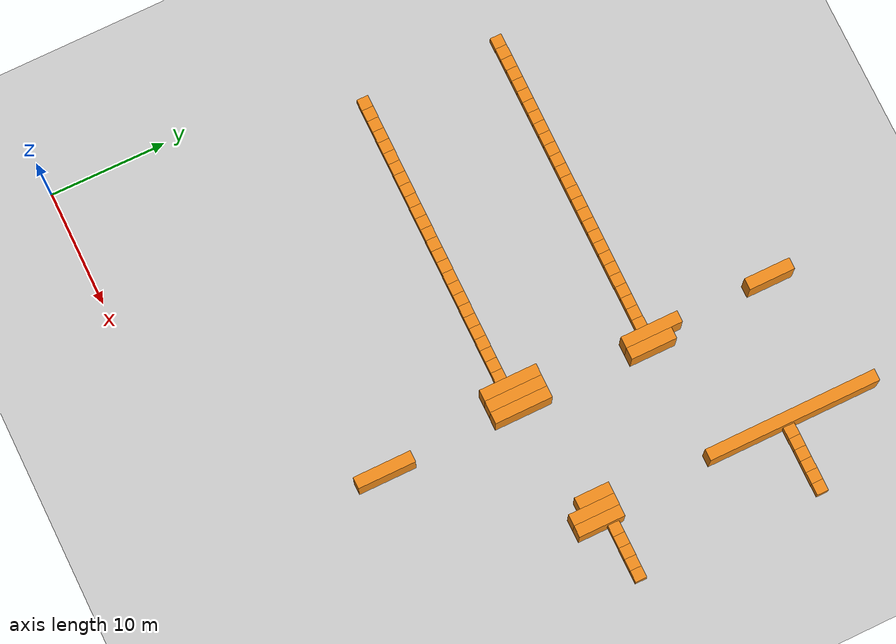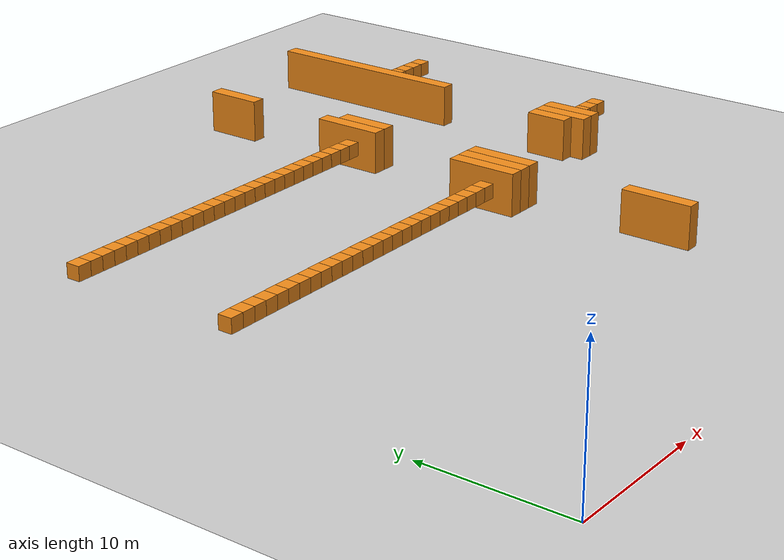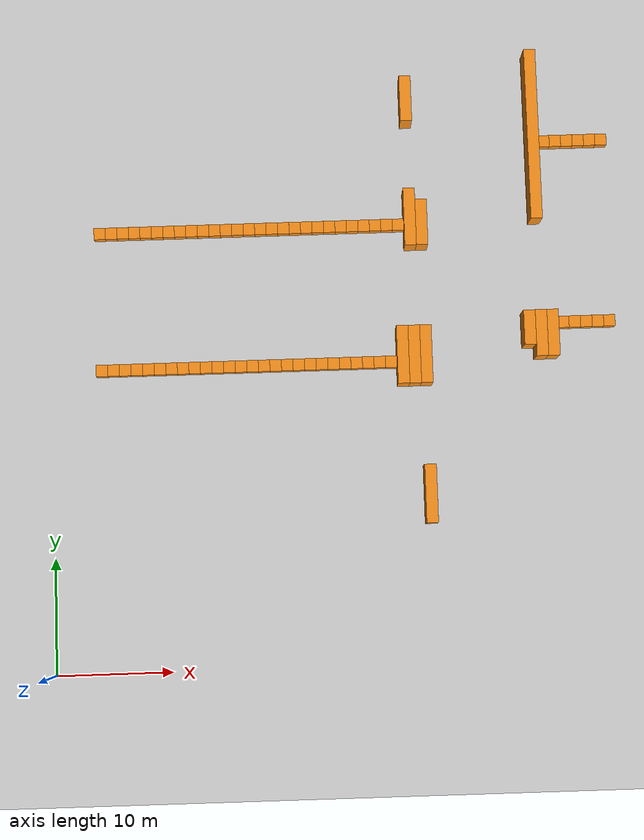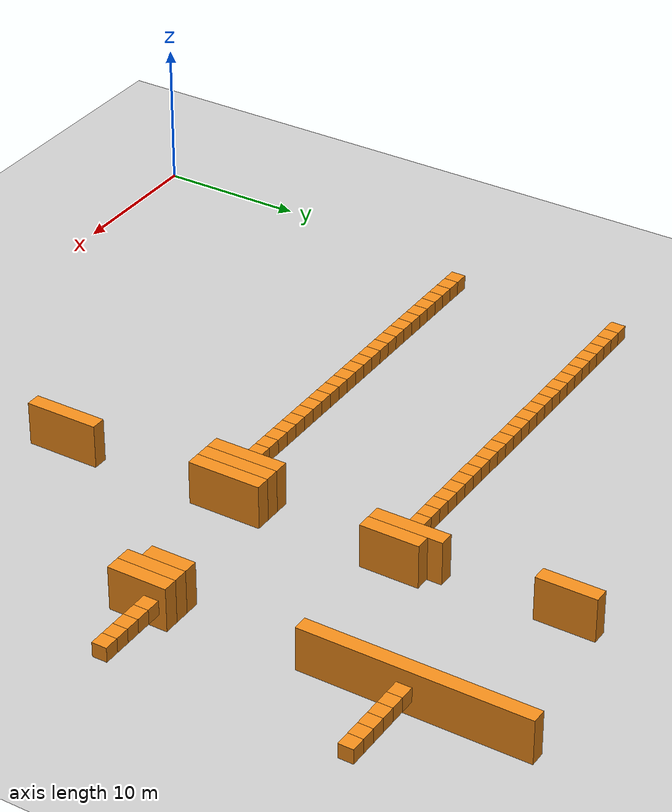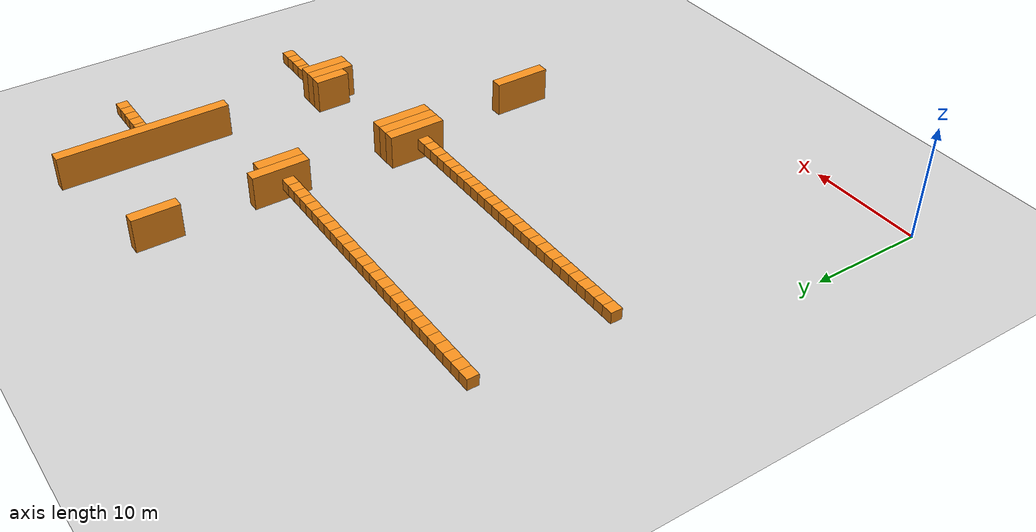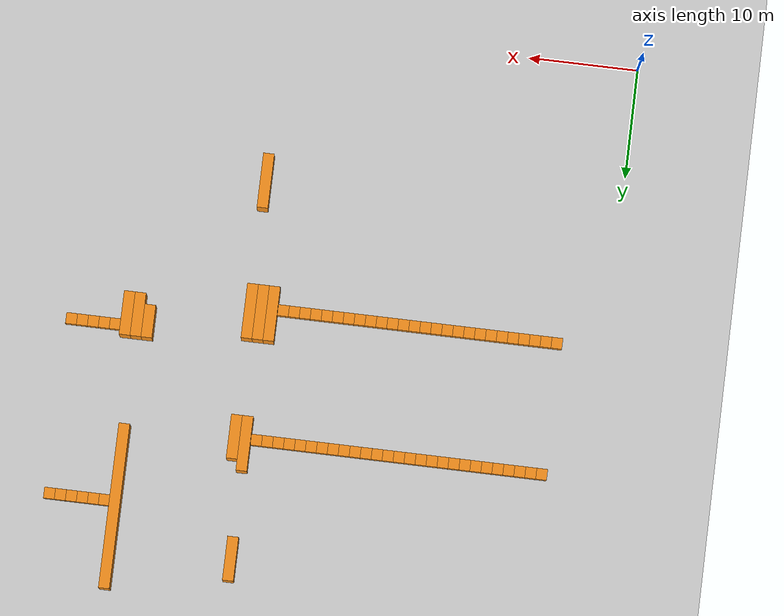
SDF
<sdf version="1.6">
 <world name="default">
  <include><uri>model://ground_plane</uri></include>
  <model name="unit_box_004">
   <pose>4.50    26.00     1.50 0 0 0</pose>
   <static>1</static>
   <link name="link">
    <inertial>
     <mass>5000</mass>
     <inertia><ixx>200</ixx><ixy>0</ixy><ixz>0</ixz><iyy>200</iyy><iyz>0</iyz><izz>200</izz></inertia>
    </inertial>
    <collision name="collision"><geometry><box><size>1 1 1</size></box></geometry></collision>
    <visual name="visual">
     <geometry><box><size>1 1 1</size></box></geometry>
     <material>
      <script><name>Gazebo/Orange</name><uri>file://media/materials/scripts/gazebo.material</uri></script>
     </material>
    </visual>
   </link>
  </model>
  <model name="unit_box_005">
   <pose>4.50    38.00     1.50 0 0 0</pose>
   <static>1</static>
   <link name="link">
    <inertial>
     <mass>5000</mass>
     <inertia><ixx>200</ixx><ixy>0</ixy><ixz>0</ixz><iyy>200</iyy><iyz>0</iyz><izz>200</izz></inertia>
    </inertial>
    <collision name="collision"><geometry><box><size>1 1 1</size></box></geometry></collision>
    <visual name="visual">
     <geometry><box><size>1 1 1</size></box></geometry>
     <material>
      <script><name>Gazebo/Orange</name><uri>file://media/materials/scripts/gazebo.material</uri></script>
     </material>
    </visual>
   </link>
  </model>
  <model name="unit_box_017">
   <pose>5.50    26.00     1.50 0 0 0</pose>
   <static>1</static>
   <link name="link">
    <inertial>
     <mass>5000</mass>
     <inertia><ixx>200</ixx><ixy>0</ixy><ixz>0</ixz><iyy>200</iyy><iyz>0</iyz><izz>200</izz></inertia>
    </inertial>
    <collision name="collision"><geometry><box><size>1 1 1</size></box></geometry></collision>
    <visual name="visual">
     <geometry><box><size>1 1 1</size></box></geometry>
     <material>
      <script><name>Gazebo/Orange</name><uri>file://media/materials/scripts/gazebo.material</uri></script>
     </material>
    </visual>
   </link>
  </model>
  <model name="unit_box_018">
   <pose>5.50    38.00     1.50 0 0 0</pose>
   <static>1</static>
   <link name="link">
    <inertial>
     <mass>5000</mass>
     <inertia><ixx>200</ixx><ixy>0</ixy><ixz>0</ixz><iyy>200</iyy><iyz>0</iyz><izz>200</izz></inertia>
    </inertial>
    <collision name="collision"><geometry><box><size>1 1 1</size></box></geometry></collision>
    <visual name="visual">
     <geometry><box><size>1 1 1</size></box></geometry>
     <material>
      <script><name>Gazebo/Orange</name><uri>file://media/materials/scripts/gazebo.material</uri></script>
     </material>
    </visual>
   </link>
  </model>
  <model name="unit_box_030">
   <pose>6.50    26.00     1.50 0 0 0</pose>
   <static>1</static>
   <link name="link">
    <inertial>
     <mass>5000</mass>
     <inertia><ixx>200</ixx><ixy>0</ixy><ixz>0</ixz><iyy>200</iyy><iyz>0</iyz><izz>200</izz></inertia>
    </inertial>
    <collision name="collision"><geometry><box><size>1 1 1</size></box></geometry></collision>
    <visual name="visual">
     <geometry><box><size>1 1 1</size></box></geometry>
     <material>
      <script><name>Gazebo/Orange</name><uri>file://media/materials/scripts/gazebo.material</uri></script>
     </material>
    </visual>
   </link>
  </model>
  <model name="unit_box_031">
   <pose>6.50    38.00     1.50 0 0 0</pose>
   <static>1</static>
   <link name="link">
    <inertial>
     <mass>5000</mass>
     <inertia><ixx>200</ixx><ixy>0</ixy><ixz>0</ixz><iyy>200</iyy><iyz>0</iyz><izz>200</izz></inertia>
    </inertial>
    <collision name="collision"><geometry><box><size>1 1 1</size></box></geometry></collision>
    <visual name="visual">
     <geometry><box><size>1 1 1</size></box></geometry>
     <material>
      <script><name>Gazebo/Orange</name><uri>file://media/materials/scripts/gazebo.material</uri></script>
     </material>
    </visual>
   </link>
  </model>
  <model name="unit_box_043">
   <pose>7.50    26.00     1.50 0 0 0</pose>
   <static>1</static>
   <link name="link">
    <inertial>
     <mass>5000</mass>
     <inertia><ixx>200</ixx><ixy>0</ixy><ixz>0</ixz><iyy>200</iyy><iyz>0</iyz><izz>200</izz></inertia>
    </inertial>
    <collision name="collision"><geometry><box><size>1 1 1</size></box></geometry></collision>
    <visual name="visual">
     <geometry><box><size>1 1 1</size></box></geometry>
     <material>
      <script><name>Gazebo/Orange</name><uri>file://media/materials/scripts/gazebo.material</uri></script>
     </material>
    </visual>
   </link>
  </model>
  <model name="unit_box_044">
   <pose>7.50    38.00     1.50 0 0 0</pose>
   <static>1</static>
   <link name="link">
    <inertial>
     <mass>5000</mass>
     <inertia><ixx>200</ixx><ixy>0</ixy><ixz>0</ixz><iyy>200</iyy><iyz>0</iyz><izz>200</izz></inertia>
    </inertial>
    <collision name="collision"><geometry><box><size>1 1 1</size></box></geometry></collision>
    <visual name="visual">
     <geometry><box><size>1 1 1</size></box></geometry>
     <material>
      <script><name>Gazebo/Orange</name><uri>file://media/materials/scripts/gazebo.material</uri></script>
     </material>
    </visual>
   </link>
  </model>
  <model name="unit_box_056">
   <pose>8.50    26.00     1.50 0 0 0</pose>
   <static>1</static>
   <link name="link">
    <inertial>
     <mass>5000</mass>
     <inertia><ixx>200</ixx><ixy>0</ixy><ixz>0</ixz><iyy>200</iyy><iyz>0</iyz><izz>200</izz></inertia>
    </inertial>
    <collision name="collision"><geometry><box><size>1 1 1</size></box></geometry></collision>
    <visual name="visual">
     <geometry><box><size>1 1 1</size></box></geometry>
     <material>
      <script><name>Gazebo/Orange</name><uri>file://media/materials/scripts/gazebo.material</uri></script>
     </material>
    </visual>
   </link>
  </model>
  <model name="unit_box_057">
   <pose>8.50    38.00     1.50 0 0 0</pose>
   <static>1</static>
   <link name="link">
    <inertial>
     <mass>5000</mass>
     <inertia><ixx>200</ixx><ixy>0</ixy><ixz>0</ixz><iyy>200</iyy><iyz>0</iyz><izz>200</izz></inertia>
    </inertial>
    <collision name="collision"><geometry><box><size>1 1 1</size></box></geometry></collision>
    <visual name="visual">
     <geometry><box><size>1 1 1</size></box></geometry>
     <material>
      <script><name>Gazebo/Orange</name><uri>file://media/materials/scripts/gazebo.material</uri></script>
     </material>
    </visual>
   </link>
  </model>
  <model name="unit_box_069">
   <pose>9.50    26.00     1.50 0 0 0</pose>
   <static>1</static>
   <link name="link">
    <inertial>
     <mass>5000</mass>
     <inertia><ixx>200</ixx><ixy>0</ixy><ixz>0</ixz><iyy>200</iyy><iyz>0</iyz><izz>200</izz></inertia>
    </inertial>
    <collision name="collision"><geometry><box><size>1 1 1</size></box></geometry></collision>
    <visual name="visual">
     <geometry><box><size>1 1 1</size></box></geometry>
     <material>
      <script><name>Gazebo/Orange</name><uri>file://media/materials/scripts/gazebo.material</uri></script>
     </material>
    </visual>
   </link>
  </model>
  <model name="unit_box_070">
   <pose>9.50    38.00     1.50 0 0 0</pose>
   <static>1</static>
   <link name="link">
    <inertial>
     <mass>5000</mass>
     <inertia><ixx>200</ixx><ixy>0</ixy><ixz>0</ixz><iyy>200</iyy><iyz>0</iyz><izz>200</izz></inertia>
    </inertial>
    <collision name="collision"><geometry><box><size>1 1 1</size></box></geometry></collision>
    <visual name="visual">
     <geometry><box><size>1 1 1</size></box></geometry>
     <material>
      <script><name>Gazebo/Orange</name><uri>file://media/materials/scripts/gazebo.material</uri></script>
     </material>
    </visual>
   </link>
  </model>
  <model name="unit_box_082">
   <pose>10.50    26.00     1.50 0 0 0</pose>
   <static>1</static>
   <link name="link">
    <inertial>
     <mass>5000</mass>
     <inertia><ixx>200</ixx><ixy>0</ixy><ixz>0</ixz><iyy>200</iyy><iyz>0</iyz><izz>200</izz></inertia>
    </inertial>
    <collision name="collision"><geometry><box><size>1 1 1</size></box></geometry></collision>
    <visual name="visual">
     <geometry><box><size>1 1 1</size></box></geometry>
     <material>
      <script><name>Gazebo/Orange</name><uri>file://media/materials/scripts/gazebo.material</uri></script>
     </material>
    </visual>
   </link>
  </model>
  <model name="unit_box_083">
   <pose>10.50    38.00     1.50 0 0 0</pose>
   <static>1</static>
   <link name="link">
    <inertial>
     <mass>5000</mass>
     <inertia><ixx>200</ixx><ixy>0</ixy><ixz>0</ixz><iyy>200</iyy><iyz>0</iyz><izz>200</izz></inertia>
    </inertial>
    <collision name="collision"><geometry><box><size>1 1 1</size></box></geometry></collision>
    <visual name="visual">
     <geometry><box><size>1 1 1</size></box></geometry>
     <material>
      <script><name>Gazebo/Orange</name><uri>file://media/materials/scripts/gazebo.material</uri></script>
     </material>
    </visual>
   </link>
  </model>
  <model name="unit_box_095">
   <pose>11.50    26.00     1.50 0 0 0</pose>
   <static>1</static>
   <link name="link">
    <inertial>
     <mass>5000</mass>
     <inertia><ixx>200</ixx><ixy>0</ixy><ixz>0</ixz><iyy>200</iyy><iyz>0</iyz><izz>200</izz></inertia>
    </inertial>
    <collision name="collision"><geometry><box><size>1 1 1</size></box></geometry></collision>
    <visual name="visual">
     <geometry><box><size>1 1 1</size></box></geometry>
     <material>
      <script><name>Gazebo/Orange</name><uri>file://media/materials/scripts/gazebo.material</uri></script>
     </material>
    </visual>
   </link>
  </model>
  <model name="unit_box_096">
   <pose>11.50    38.00     1.50 0 0 0</pose>
   <static>1</static>
   <link name="link">
    <inertial>
     <mass>5000</mass>
     <inertia><ixx>200</ixx><ixy>0</ixy><ixz>0</ixz><iyy>200</iyy><iyz>0</iyz><izz>200</izz></inertia>
    </inertial>
    <collision name="collision"><geometry><box><size>1 1 1</size></box></geometry></collision>
    <visual name="visual">
     <geometry><box><size>1 1 1</size></box></geometry>
     <material>
      <script><name>Gazebo/Orange</name><uri>file://media/materials/scripts/gazebo.material</uri></script>
     </material>
    </visual>
   </link>
  </model>
  <model name="unit_box_108">
   <pose>12.50    26.00     1.50 0 0 0</pose>
   <static>1</static>
   <link name="link">
    <inertial>
     <mass>5000</mass>
     <inertia><ixx>200</ixx><ixy>0</ixy><ixz>0</ixz><iyy>200</iyy><iyz>0</iyz><izz>200</izz></inertia>
    </inertial>
    <collision name="collision"><geometry><box><size>1 1 1</size></box></geometry></collision>
    <visual name="visual">
     <geometry><box><size>1 1 1</size></box></geometry>
     <material>
      <script><name>Gazebo/Orange</name><uri>file://media/materials/scripts/gazebo.material</uri></script>
     </material>
    </visual>
   </link>
  </model>
  <model name="unit_box_109">
   <pose>12.50    38.00     1.50 0 0 0</pose>
   <static>1</static>
   <link name="link">
    <inertial>
     <mass>5000</mass>
     <inertia><ixx>200</ixx><ixy>0</ixy><ixz>0</ixz><iyy>200</iyy><iyz>0</iyz><izz>200</izz></inertia>
    </inertial>
    <collision name="collision"><geometry><box><size>1 1 1</size></box></geometry></collision>
    <visual name="visual">
     <geometry><box><size>1 1 1</size></box></geometry>
     <material>
      <script><name>Gazebo/Orange</name><uri>file://media/materials/scripts/gazebo.material</uri></script>
     </material>
    </visual>
   </link>
  </model>
  <model name="unit_box_121">
   <pose>13.50    26.00     1.50 0 0 0</pose>
   <static>1</static>
   <link name="link">
    <inertial>
     <mass>5000</mass>
     <inertia><ixx>200</ixx><ixy>0</ixy><ixz>0</ixz><iyy>200</iyy><iyz>0</iyz><izz>200</izz></inertia>
    </inertial>
    <collision name="collision"><geometry><box><size>1 1 1</size></box></geometry></collision>
    <visual name="visual">
     <geometry><box><size>1 1 1</size></box></geometry>
     <material>
      <script><name>Gazebo/Orange</name><uri>file://media/materials/scripts/gazebo.material</uri></script>
     </material>
    </visual>
   </link>
  </model>
  <model name="unit_box_122">
   <pose>13.50    38.00     1.50 0 0 0</pose>
   <static>1</static>
   <link name="link">
    <inertial>
     <mass>5000</mass>
     <inertia><ixx>200</ixx><ixy>0</ixy><ixz>0</ixz><iyy>200</iyy><iyz>0</iyz><izz>200</izz></inertia>
    </inertial>
    <collision name="collision"><geometry><box><size>1 1 1</size></box></geometry></collision>
    <visual name="visual">
     <geometry><box><size>1 1 1</size></box></geometry>
     <material>
      <script><name>Gazebo/Orange</name><uri>file://media/materials/scripts/gazebo.material</uri></script>
     </material>
    </visual>
   </link>
  </model>
  <model name="unit_box_134">
   <pose>14.50    26.00     1.50 0 0 0</pose>
   <static>1</static>
   <link name="link">
    <inertial>
     <mass>5000</mass>
     <inertia><ixx>200</ixx><ixy>0</ixy><ixz>0</ixz><iyy>200</iyy><iyz>0</iyz><izz>200</izz></inertia>
    </inertial>
    <collision name="collision"><geometry><box><size>1 1 1</size></box></geometry></collision>
    <visual name="visual">
     <geometry><box><size>1 1 1</size></box></geometry>
     <material>
      <script><name>Gazebo/Orange</name><uri>file://media/materials/scripts/gazebo.material</uri></script>
     </material>
    </visual>
   </link>
  </model>
  <model name="unit_box_135">
   <pose>14.50    38.00     1.50 0 0 0</pose>
   <static>1</static>
   <link name="link">
    <inertial>
     <mass>5000</mass>
     <inertia><ixx>200</ixx><ixy>0</ixy><ixz>0</ixz><iyy>200</iyy><iyz>0</iyz><izz>200</izz></inertia>
    </inertial>
    <collision name="collision"><geometry><box><size>1 1 1</size></box></geometry></collision>
    <visual name="visual">
     <geometry><box><size>1 1 1</size></box></geometry>
     <material>
      <script><name>Gazebo/Orange</name><uri>file://media/materials/scripts/gazebo.material</uri></script>
     </material>
    </visual>
   </link>
  </model>
  <model name="unit_box_147">
   <pose>15.50    26.00     1.50 0 0 0</pose>
   <static>1</static>
   <link name="link">
    <inertial>
     <mass>5000</mass>
     <inertia><ixx>200</ixx><ixy>0</ixy><ixz>0</ixz><iyy>200</iyy><iyz>0</iyz><izz>200</izz></inertia>
    </inertial>
    <collision name="collision"><geometry><box><size>1 1 1</size></box></geometry></collision>
    <visual name="visual">
     <geometry><box><size>1 1 1</size></box></geometry>
     <material>
      <script><name>Gazebo/Orange</name><uri>file://media/materials/scripts/gazebo.material</uri></script>
     </material>
    </visual>
   </link>
  </model>
  <model name="unit_box_148">
   <pose>15.50    38.00     1.50 0 0 0</pose>
   <static>1</static>
   <link name="link">
    <inertial>
     <mass>5000</mass>
     <inertia><ixx>200</ixx><ixy>0</ixy><ixz>0</ixz><iyy>200</iyy><iyz>0</iyz><izz>200</izz></inertia>
    </inertial>
    <collision name="collision"><geometry><box><size>1 1 1</size></box></geometry></collision>
    <visual name="visual">
     <geometry><box><size>1 1 1</size></box></geometry>
     <material>
      <script><name>Gazebo/Orange</name><uri>file://media/materials/scripts/gazebo.material</uri></script>
     </material>
    </visual>
   </link>
  </model>
  <model name="unit_box_160">
   <pose>16.50    26.00     1.50 0 0 0</pose>
   <static>1</static>
   <link name="link">
    <inertial>
     <mass>5000</mass>
     <inertia><ixx>200</ixx><ixy>0</ixy><ixz>0</ixz><iyy>200</iyy><iyz>0</iyz><izz>200</izz></inertia>
    </inertial>
    <collision name="collision"><geometry><box><size>1 1 1</size></box></geometry></collision>
    <visual name="visual">
     <geometry><box><size>1 1 1</size></box></geometry>
     <material>
      <script><name>Gazebo/Orange</name><uri>file://media/materials/scripts/gazebo.material</uri></script>
     </material>
    </visual>
   </link>
  </model>
  <model name="unit_box_161">
   <pose>16.50    38.00     1.50 0 0 0</pose>
   <static>1</static>
   <link name="link">
    <inertial>
     <mass>5000</mass>
     <inertia><ixx>200</ixx><ixy>0</ixy><ixz>0</ixz><iyy>200</iyy><iyz>0</iyz><izz>200</izz></inertia>
    </inertial>
    <collision name="collision"><geometry><box><size>1 1 1</size></box></geometry></collision>
    <visual name="visual">
     <geometry><box><size>1 1 1</size></box></geometry>
     <material>
      <script><name>Gazebo/Orange</name><uri>file://media/materials/scripts/gazebo.material</uri></script>
     </material>
    </visual>
   </link>
  </model>
  <model name="unit_box_173">
   <pose>17.50    26.00     1.50 0 0 0</pose>
   <static>1</static>
   <link name="link">
    <inertial>
     <mass>5000</mass>
     <inertia><ixx>200</ixx><ixy>0</ixy><ixz>0</ixz><iyy>200</iyy><iyz>0</iyz><izz>200</izz></inertia>
    </inertial>
    <collision name="collision"><geometry><box><size>1 1 1</size></box></geometry></collision>
    <visual name="visual">
     <geometry><box><size>1 1 1</size></box></geometry>
     <material>
      <script><name>Gazebo/Orange</name><uri>file://media/materials/scripts/gazebo.material</uri></script>
     </material>
    </visual>
   </link>
  </model>
  <model name="unit_box_174">
   <pose>17.50    38.00     1.50 0 0 0</pose>
   <static>1</static>
   <link name="link">
    <inertial>
     <mass>5000</mass>
     <inertia><ixx>200</ixx><ixy>0</ixy><ixz>0</ixz><iyy>200</iyy><iyz>0</iyz><izz>200</izz></inertia>
    </inertial>
    <collision name="collision"><geometry><box><size>1 1 1</size></box></geometry></collision>
    <visual name="visual">
     <geometry><box><size>1 1 1</size></box></geometry>
     <material>
      <script><name>Gazebo/Orange</name><uri>file://media/materials/scripts/gazebo.material</uri></script>
     </material>
    </visual>
   </link>
  </model>
  <model name="unit_box_186">
   <pose>18.50    26.00     1.50 0 0 0</pose>
   <static>1</static>
   <link name="link">
    <inertial>
     <mass>5000</mass>
     <inertia><ixx>200</ixx><ixy>0</ixy><ixz>0</ixz><iyy>200</iyy><iyz>0</iyz><izz>200</izz></inertia>
    </inertial>
    <collision name="collision"><geometry><box><size>1 1 1</size></box></geometry></collision>
    <visual name="visual">
     <geometry><box><size>1 1 1</size></box></geometry>
     <material>
      <script><name>Gazebo/Orange</name><uri>file://media/materials/scripts/gazebo.material</uri></script>
     </material>
    </visual>
   </link>
  </model>
  <model name="unit_box_187">
   <pose>18.50    38.00     1.50 0 0 0</pose>
   <static>1</static>
   <link name="link">
    <inertial>
     <mass>5000</mass>
     <inertia><ixx>200</ixx><ixy>0</ixy><ixz>0</ixz><iyy>200</iyy><iyz>0</iyz><izz>200</izz></inertia>
    </inertial>
    <collision name="collision"><geometry><box><size>1 1 1</size></box></geometry></collision>
    <visual name="visual">
     <geometry><box><size>1 1 1</size></box></geometry>
     <material>
      <script><name>Gazebo/Orange</name><uri>file://media/materials/scripts/gazebo.material</uri></script>
     </material>
    </visual>
   </link>
  </model>
  <model name="unit_box_199">
   <pose>19.50    26.00     1.50 0 0 0</pose>
   <static>1</static>
   <link name="link">
    <inertial>
     <mass>5000</mass>
     <inertia><ixx>200</ixx><ixy>0</ixy><ixz>0</ixz><iyy>200</iyy><iyz>0</iyz><izz>200</izz></inertia>
    </inertial>
    <collision name="collision"><geometry><box><size>1 1 1</size></box></geometry></collision>
    <visual name="visual">
     <geometry><box><size>1 1 1</size></box></geometry>
     <material>
      <script><name>Gazebo/Orange</name><uri>file://media/materials/scripts/gazebo.material</uri></script>
     </material>
    </visual>
   </link>
  </model>
  <model name="unit_box_200">
   <pose>19.50    38.00     1.50 0 0 0</pose>
   <static>1</static>
   <link name="link">
    <inertial>
     <mass>5000</mass>
     <inertia><ixx>200</ixx><ixy>0</ixy><ixz>0</ixz><iyy>200</iyy><iyz>0</iyz><izz>200</izz></inertia>
    </inertial>
    <collision name="collision"><geometry><box><size>1 1 1</size></box></geometry></collision>
    <visual name="visual">
     <geometry><box><size>1 1 1</size></box></geometry>
     <material>
      <script><name>Gazebo/Orange</name><uri>file://media/materials/scripts/gazebo.material</uri></script>
     </material>
    </visual>
   </link>
  </model>
  <model name="unit_box_212">
   <pose>20.50    26.00     1.50 0 0 0</pose>
   <static>1</static>
   <link name="link">
    <inertial>
     <mass>5000</mass>
     <inertia><ixx>200</ixx><ixy>0</ixy><ixz>0</ixz><iyy>200</iyy><iyz>0</iyz><izz>200</izz></inertia>
    </inertial>
    <collision name="collision"><geometry><box><size>1 1 1</size></box></geometry></collision>
    <visual name="visual">
     <geometry><box><size>1 1 1</size></box></geometry>
     <material>
      <script><name>Gazebo/Orange</name><uri>file://media/materials/scripts/gazebo.material</uri></script>
     </material>
    </visual>
   </link>
  </model>
  <model name="unit_box_213">
   <pose>20.50    38.00     1.50 0 0 0</pose>
   <static>1</static>
   <link name="link">
    <inertial>
     <mass>5000</mass>
     <inertia><ixx>200</ixx><ixy>0</ixy><ixz>0</ixz><iyy>200</iyy><iyz>0</iyz><izz>200</izz></inertia>
    </inertial>
    <collision name="collision"><geometry><box><size>1 1 1</size></box></geometry></collision>
    <visual name="visual">
     <geometry><box><size>1 1 1</size></box></geometry>
     <material>
      <script><name>Gazebo/Orange</name><uri>file://media/materials/scripts/gazebo.material</uri></script>
     </material>
    </visual>
   </link>
  </model>
  <model name="unit_box_225">
   <pose>21.50    26.00     1.50 0 0 0</pose>
   <static>1</static>
   <link name="link">
    <inertial>
     <mass>5000</mass>
     <inertia><ixx>200</ixx><ixy>0</ixy><ixz>0</ixz><iyy>200</iyy><iyz>0</iyz><izz>200</izz></inertia>
    </inertial>
    <collision name="collision"><geometry><box><size>1 1 1</size></box></geometry></collision>
    <visual name="visual">
     <geometry><box><size>1 1 1</size></box></geometry>
     <material>
      <script><name>Gazebo/Orange</name><uri>file://media/materials/scripts/gazebo.material</uri></script>
     </material>
    </visual>
   </link>
  </model>
  <model name="unit_box_226">
   <pose>21.50    38.00     1.50 0 0 0</pose>
   <static>1</static>
   <link name="link">
    <inertial>
     <mass>5000</mass>
     <inertia><ixx>200</ixx><ixy>0</ixy><ixz>0</ixz><iyy>200</iyy><iyz>0</iyz><izz>200</izz></inertia>
    </inertial>
    <collision name="collision"><geometry><box><size>1 1 1</size></box></geometry></collision>
    <visual name="visual">
     <geometry><box><size>1 1 1</size></box></geometry>
     <material>
      <script><name>Gazebo/Orange</name><uri>file://media/materials/scripts/gazebo.material</uri></script>
     </material>
    </visual>
   </link>
  </model>
  <model name="unit_box_238">
   <pose>22.50    26.00     1.50 0 0 0</pose>
   <static>1</static>
   <link name="link">
    <inertial>
     <mass>5000</mass>
     <inertia><ixx>200</ixx><ixy>0</ixy><ixz>0</ixz><iyy>200</iyy><iyz>0</iyz><izz>200</izz></inertia>
    </inertial>
    <collision name="collision"><geometry><box><size>1 1 1</size></box></geometry></collision>
    <visual name="visual">
     <geometry><box><size>1 1 1</size></box></geometry>
     <material>
      <script><name>Gazebo/Orange</name><uri>file://media/materials/scripts/gazebo.material</uri></script>
     </material>
    </visual>
   </link>
  </model>
  <model name="unit_box_239">
   <pose>22.50    38.00     1.50 0 0 0</pose>
   <static>1</static>
   <link name="link">
    <inertial>
     <mass>5000</mass>
     <inertia><ixx>200</ixx><ixy>0</ixy><ixz>0</ixz><iyy>200</iyy><iyz>0</iyz><izz>200</izz></inertia>
    </inertial>
    <collision name="collision"><geometry><box><size>1 1 1</size></box></geometry></collision>
    <visual name="visual">
     <geometry><box><size>1 1 1</size></box></geometry>
     <material>
      <script><name>Gazebo/Orange</name><uri>file://media/materials/scripts/gazebo.material</uri></script>
     </material>
    </visual>
   </link>
  </model>
  <model name="unit_box_251">
   <pose>23.50    26.00     1.50 0 0 0</pose>
   <static>1</static>
   <link name="link">
    <inertial>
     <mass>5000</mass>
     <inertia><ixx>200</ixx><ixy>0</ixy><ixz>0</ixz><iyy>200</iyy><iyz>0</iyz><izz>200</izz></inertia>
    </inertial>
    <collision name="collision"><geometry><box><size>1 1 1</size></box></geometry></collision>
    <visual name="visual">
     <geometry><box><size>1 1 1</size></box></geometry>
     <material>
      <script><name>Gazebo/Orange</name><uri>file://media/materials/scripts/gazebo.material</uri></script>
     </material>
    </visual>
   </link>
  </model>
  <model name="unit_box_252">
   <pose>23.50    38.00     1.50 0 0 0</pose>
   <static>1</static>
   <link name="link">
    <inertial>
     <mass>5000</mass>
     <inertia><ixx>200</ixx><ixy>0</ixy><ixz>0</ixz><iyy>200</iyy><iyz>0</iyz><izz>200</izz></inertia>
    </inertial>
    <collision name="collision"><geometry><box><size>1 1 1</size></box></geometry></collision>
    <visual name="visual">
     <geometry><box><size>1 1 1</size></box></geometry>
     <material>
      <script><name>Gazebo/Orange</name><uri>file://media/materials/scripts/gazebo.material</uri></script>
     </material>
    </visual>
   </link>
  </model>
  <model name="unit_box_264">
   <pose>24.50    26.00     1.50 0 0 0</pose>
   <static>1</static>
   <link name="link">
    <inertial>
     <mass>5000</mass>
     <inertia><ixx>200</ixx><ixy>0</ixy><ixz>0</ixz><iyy>200</iyy><iyz>0</iyz><izz>200</izz></inertia>
    </inertial>
    <collision name="collision"><geometry><box><size>1 1 1</size></box></geometry></collision>
    <visual name="visual">
     <geometry><box><size>1 1 1</size></box></geometry>
     <material>
      <script><name>Gazebo/Orange</name><uri>file://media/materials/scripts/gazebo.material</uri></script>
     </material>
    </visual>
   </link>
  </model>
  <model name="unit_box_265">
   <pose>24.50    38.00     1.50 0 0 0</pose>
   <static>1</static>
   <link name="link">
    <inertial>
     <mass>5000</mass>
     <inertia><ixx>200</ixx><ixy>0</ixy><ixz>0</ixz><iyy>200</iyy><iyz>0</iyz><izz>200</izz></inertia>
    </inertial>
    <collision name="collision"><geometry><box><size>1 1 1</size></box></geometry></collision>
    <visual name="visual">
     <geometry><box><size>1 1 1</size></box></geometry>
     <material>
      <script><name>Gazebo/Orange</name><uri>file://media/materials/scripts/gazebo.material</uri></script>
     </material>
    </visual>
   </link>
  </model>
  <model name="unit_box_277">
   <pose>25.50    26.00     1.50 0 0 0</pose>
   <static>1</static>
   <link name="link">
    <inertial>
     <mass>5000</mass>
     <inertia><ixx>200</ixx><ixy>0</ixy><ixz>0</ixz><iyy>200</iyy><iyz>0</iyz><izz>200</izz></inertia>
    </inertial>
    <collision name="collision"><geometry><box><size>1 1 1</size></box></geometry></collision>
    <visual name="visual">
     <geometry><box><size>1 1 1</size></box></geometry>
     <material>
      <script><name>Gazebo/Orange</name><uri>file://media/materials/scripts/gazebo.material</uri></script>
     </material>
    </visual>
   </link>
  </model>
  <model name="unit_box_278">
   <pose>25.50    38.00     1.50 0 0 0</pose>
   <static>1</static>
   <link name="link">
    <inertial>
     <mass>5000</mass>
     <inertia><ixx>200</ixx><ixy>0</ixy><ixz>0</ixz><iyy>200</iyy><iyz>0</iyz><izz>200</izz></inertia>
    </inertial>
    <collision name="collision"><geometry><box><size>1 1 1</size></box></geometry></collision>
    <visual name="visual">
     <geometry><box><size>1 1 1</size></box></geometry>
     <material>
      <script><name>Gazebo/Orange</name><uri>file://media/materials/scripts/gazebo.material</uri></script>
     </material>
    </visual>
   </link>
  </model>
  <model name="unit_box_290">
   <pose>26.50    26.00     1.50 0 0 0</pose>
   <static>1</static>
   <link name="link">
    <inertial>
     <mass>5000</mass>
     <inertia><ixx>200</ixx><ixy>0</ixy><ixz>0</ixz><iyy>200</iyy><iyz>0</iyz><izz>200</izz></inertia>
    </inertial>
    <collision name="collision"><geometry><box><size>1 1 1</size></box></geometry></collision>
    <visual name="visual">
     <geometry><box><size>1 1 1</size></box></geometry>
     <material>
      <script><name>Gazebo/Orange</name><uri>file://media/materials/scripts/gazebo.material</uri></script>
     </material>
    </visual>
   </link>
  </model>
  <model name="unit_box_291">
   <pose>26.50    38.00     1.50 0 0 0</pose>
   <static>1</static>
   <link name="link">
    <inertial>
     <mass>5000</mass>
     <inertia><ixx>200</ixx><ixy>0</ixy><ixz>0</ixz><iyy>200</iyy><iyz>0</iyz><izz>200</izz></inertia>
    </inertial>
    <collision name="collision"><geometry><box><size>1 1 1</size></box></geometry></collision>
    <visual name="visual">
     <geometry><box><size>1 1 1</size></box></geometry>
     <material>
      <script><name>Gazebo/Orange</name><uri>file://media/materials/scripts/gazebo.material</uri></script>
     </material>
    </visual>
   </link>
  </model>
  <model name="unit_box_303">
   <pose>27.50    26.00     1.50 0 0 0</pose>
   <static>1</static>
   <link name="link">
    <inertial>
     <mass>5000</mass>
     <inertia><ixx>200</ixx><ixy>0</ixy><ixz>0</ixz><iyy>200</iyy><iyz>0</iyz><izz>200</izz></inertia>
    </inertial>
    <collision name="collision"><geometry><box><size>1 1 1</size></box></geometry></collision>
    <visual name="visual">
     <geometry><box><size>1 1 1</size></box></geometry>
     <material>
      <script><name>Gazebo/Orange</name><uri>file://media/materials/scripts/gazebo.material</uri></script>
     </material>
    </visual>
   </link>
  </model>
  <model name="unit_box_304">
   <pose>27.50    38.00     1.50 0 0 0</pose>
   <static>1</static>
   <link name="link">
    <inertial>
     <mass>5000</mass>
     <inertia><ixx>200</ixx><ixy>0</ixy><ixz>0</ixz><iyy>200</iyy><iyz>0</iyz><izz>200</izz></inertia>
    </inertial>
    <collision name="collision"><geometry><box><size>1 1 1</size></box></geometry></collision>
    <visual name="visual">
     <geometry><box><size>1 1 1</size></box></geometry>
     <material>
      <script><name>Gazebo/Orange</name><uri>file://media/materials/scripts/gazebo.material</uri></script>
     </material>
    </visual>
   </link>
  </model>
  <model name="unit_box_316">
   <pose>28.50    26.00     1.50 0 0 0</pose>
   <static>1</static>
   <link name="link">
    <inertial>
     <mass>5000</mass>
     <inertia><ixx>200</ixx><ixy>0</ixy><ixz>0</ixz><iyy>200</iyy><iyz>0</iyz><izz>200</izz></inertia>
    </inertial>
    <collision name="collision"><geometry><box><size>1 1 1</size></box></geometry></collision>
    <visual name="visual">
     <geometry><box><size>1 1 1</size></box></geometry>
     <material>
      <script><name>Gazebo/Orange</name><uri>file://media/materials/scripts/gazebo.material</uri></script>
     </material>
    </visual>
   </link>
  </model>
  <model name="unit_box_317">
   <pose>28.50    38.00     1.50 0 0 0</pose>
   <static>1</static>
   <link name="link">
    <inertial>
     <mass>5000</mass>
     <inertia><ixx>200</ixx><ixy>0</ixy><ixz>0</ixz><iyy>200</iyy><iyz>0</iyz><izz>200</izz></inertia>
    </inertial>
    <collision name="collision"><geometry><box><size>1 1 1</size></box></geometry></collision>
    <visual name="visual">
     <geometry><box><size>1 1 1</size></box></geometry>
     <material>
      <script><name>Gazebo/Orange</name><uri>file://media/materials/scripts/gazebo.material</uri></script>
     </material>
    </visual>
   </link>
  </model>
  <model name="unit_box_329">
   <pose>29.50    26.00     1.50 0 0 0</pose>
   <static>1</static>
   <link name="link">
    <inertial>
     <mass>5000</mass>
     <inertia><ixx>200</ixx><ixy>0</ixy><ixz>0</ixz><iyy>200</iyy><iyz>0</iyz><izz>200</izz></inertia>
    </inertial>
    <collision name="collision"><geometry><box><size>1 1 1</size></box></geometry></collision>
    <visual name="visual">
     <geometry><box><size>1 1 1</size></box></geometry>
     <material>
      <script><name>Gazebo/Orange</name><uri>file://media/materials/scripts/gazebo.material</uri></script>
     </material>
    </visual>
   </link>
  </model>
  <model name="unit_box_330">
   <pose>29.50    38.00     1.50 0 0 0</pose>
   <static>1</static>
   <link name="link">
    <inertial>
     <mass>5000</mass>
     <inertia><ixx>200</ixx><ixy>0</ixy><ixz>0</ixz><iyy>200</iyy><iyz>0</iyz><izz>200</izz></inertia>
    </inertial>
    <collision name="collision"><geometry><box><size>1 1 1</size></box></geometry></collision>
    <visual name="visual">
     <geometry><box><size>1 1 1</size></box></geometry>
     <material>
      <script><name>Gazebo/Orange</name><uri>file://media/materials/scripts/gazebo.material</uri></script>
     </material>
    </visual>
   </link>
  </model>
  <model name="unit_box_342">
   <pose>30.50    26.50     1.50 0 0 0</pose>
   <static>1</static>
   <link name="link">
    <inertial>
     <mass>5000</mass>
     <inertia><ixx>200</ixx><ixy>0</ixy><ixz>0</ixz><iyy>200</iyy><iyz>0</iyz><izz>200</izz></inertia>
    </inertial>
    <collision name="collision"><geometry><box><size>1 5 3</size></box></geometry></collision>
    <visual name="visual">
     <geometry><box><size>1 5 3</size></box></geometry>
     <material>
      <script><name>Gazebo/Orange</name><uri>file://media/materials/scripts/gazebo.material</uri></script>
     </material>
    </visual>
   </link>
  </model>
  <model name="unit_box_343">
   <pose>30.50    38.00     1.50 0 0 0</pose>
   <static>1</static>
   <link name="link">
    <inertial>
     <mass>5000</mass>
     <inertia><ixx>200</ixx><ixy>0</ixy><ixz>0</ixz><iyy>200</iyy><iyz>0</iyz><izz>200</izz></inertia>
    </inertial>
    <collision name="collision"><geometry><box><size>1 1 1</size></box></geometry></collision>
    <visual name="visual">
     <geometry><box><size>1 1 1</size></box></geometry>
     <material>
      <script><name>Gazebo/Orange</name><uri>file://media/materials/scripts/gazebo.material</uri></script>
     </material>
    </visual>
   </link>
  </model>
  <model name="unit_box_355">
   <pose>31.50    26.50     1.50 0 0 0</pose>
   <static>1</static>
   <link name="link">
    <inertial>
     <mass>5000</mass>
     <inertia><ixx>200</ixx><ixy>0</ixy><ixz>0</ixz><iyy>200</iyy><iyz>0</iyz><izz>200</izz></inertia>
    </inertial>
    <collision name="collision"><geometry><box><size>1 5 3</size></box></geometry></collision>
    <visual name="visual">
     <geometry><box><size>1 5 3</size></box></geometry>
     <material>
      <script><name>Gazebo/Orange</name><uri>file://media/materials/scripts/gazebo.material</uri></script>
     </material>
    </visual>
   </link>
  </model>
  <model name="unit_box_356">
   <pose>31.50    38.50     1.50 0 0 0</pose>
   <static>1</static>
   <link name="link">
    <inertial>
     <mass>5000</mass>
     <inertia><ixx>200</ixx><ixy>0</ixy><ixz>0</ixz><iyy>200</iyy><iyz>0</iyz><izz>200</izz></inertia>
    </inertial>
    <collision name="collision"><geometry><box><size>1 5 3</size></box></geometry></collision>
    <visual name="visual">
     <geometry><box><size>1 5 3</size></box></geometry>
     <material>
      <script><name>Gazebo/Orange</name><uri>file://media/materials/scripts/gazebo.material</uri></script>
     </material>
    </visual>
   </link>
  </model>
  <model name="unit_box_357">
   <pose>31.50    49.00     1.50 0 0 0</pose>
   <static>1</static>
   <link name="link">
    <inertial>
     <mass>5000</mass>
     <inertia><ixx>200</ixx><ixy>0</ixy><ixz>0</ixz><iyy>200</iyy><iyz>0</iyz><izz>200</izz></inertia>
    </inertial>
    <collision name="collision"><geometry><box><size>1 4 3</size></box></geometry></collision>
    <visual name="visual">
     <geometry><box><size>1 4 3</size></box></geometry>
     <material>
      <script><name>Gazebo/Orange</name><uri>file://media/materials/scripts/gazebo.material</uri></script>
     </material>
    </visual>
   </link>
  </model>
  <model name="unit_box_369">
   <pose>32.50    14.50     1.50 0 0 0</pose>
   <static>1</static>
   <link name="link">
    <inertial>
     <mass>5000</mass>
     <inertia><ixx>200</ixx><ixy>0</ixy><ixz>0</ixz><iyy>200</iyy><iyz>0</iyz><izz>200</izz></inertia>
    </inertial>
    <collision name="collision"><geometry><box><size>1 5 3</size></box></geometry></collision>
    <visual name="visual">
     <geometry><box><size>1 5 3</size></box></geometry>
     <material>
      <script><name>Gazebo/Orange</name><uri>file://media/materials/scripts/gazebo.material</uri></script>
     </material>
    </visual>
   </link>
  </model>
  <model name="unit_box_370">
   <pose>32.50    26.50     1.50 0 0 0</pose>
   <static>1</static>
   <link name="link">
    <inertial>
     <mass>5000</mass>
     <inertia><ixx>200</ixx><ixy>0</ixy><ixz>0</ixz><iyy>200</iyy><iyz>0</iyz><izz>200</izz></inertia>
    </inertial>
    <collision name="collision"><geometry><box><size>1 5 3</size></box></geometry></collision>
    <visual name="visual">
     <geometry><box><size>1 5 3</size></box></geometry>
     <material>
      <script><name>Gazebo/Orange</name><uri>file://media/materials/scripts/gazebo.material</uri></script>
     </material>
    </visual>
   </link>
  </model>
  <model name="unit_box_371">
   <pose>32.50    38.00     1.50 0 0 0</pose>
   <static>1</static>
   <link name="link">
    <inertial>
     <mass>5000</mass>
     <inertia><ixx>200</ixx><ixy>0</ixy><ixz>0</ixz><iyy>200</iyy><iyz>0</iyz><izz>200</izz></inertia>
    </inertial>
    <collision name="collision"><geometry><box><size>1 4 3</size></box></geometry></collision>
    <visual name="visual">
     <geometry><box><size>1 4 3</size></box></geometry>
     <material>
      <script><name>Gazebo/Orange</name><uri>file://media/materials/scripts/gazebo.material</uri></script>
     </material>
    </visual>
   </link>
  </model>
  <model name="unit_box_429">
   <pose>41.50    28.50     1.50 0 0 0</pose>
   <static>1</static>
   <link name="link">
    <inertial>
     <mass>5000</mass>
     <inertia><ixx>200</ixx><ixy>0</ixy><ixz>0</ixz><iyy>200</iyy><iyz>0</iyz><izz>200</izz></inertia>
    </inertial>
    <collision name="collision"><geometry><box><size>1 3 3</size></box></geometry></collision>
    <visual name="visual">
     <geometry><box><size>1 3 3</size></box></geometry>
     <material>
      <script><name>Gazebo/Orange</name><uri>file://media/materials/scripts/gazebo.material</uri></script>
     </material>
    </visual>
   </link>
  </model>
  <model name="unit_box_437">
   <pose>42.50    28.00     1.50 0 0 0</pose>
   <static>1</static>
   <link name="link">
    <inertial>
     <mass>5000</mass>
     <inertia><ixx>200</ixx><ixy>0</ixy><ixz>0</ixz><iyy>200</iyy><iyz>0</iyz><izz>200</izz></inertia>
    </inertial>
    <collision name="collision"><geometry><box><size>1 4 3</size></box></geometry></collision>
    <visual name="visual">
     <geometry><box><size>1 4 3</size></box></geometry>
     <material>
      <script><name>Gazebo/Orange</name><uri>file://media/materials/scripts/gazebo.material</uri></script>
     </material>
    </visual>
   </link>
  </model>
  <model name="unit_box_438">
   <pose>42.50    45.50     1.50 0 0 0</pose>
   <static>1</static>
   <link name="link">
    <inertial>
     <mass>5000</mass>
     <inertia><ixx>200</ixx><ixy>0</ixy><ixz>0</ixz><iyy>200</iyy><iyz>0</iyz><izz>200</izz></inertia>
    </inertial>
    <collision name="collision"><geometry><box><size>1 15 3</size></box></geometry></collision>
    <visual name="visual">
     <geometry><box><size>1 15 3</size></box></geometry>
     <material>
      <script><name>Gazebo/Orange</name><uri>file://media/materials/scripts/gazebo.material</uri></script>
     </material>
    </visual>
   </link>
  </model>
  <model name="unit_box_450">
   <pose>43.50    28.00     1.50 0 0 0</pose>
   <static>1</static>
   <link name="link">
    <inertial>
     <mass>5000</mass>
     <inertia><ixx>200</ixx><ixy>0</ixy><ixz>0</ixz><iyy>200</iyy><iyz>0</iyz><izz>200</izz></inertia>
    </inertial>
    <collision name="collision"><geometry><box><size>1 4 3</size></box></geometry></collision>
    <visual name="visual">
     <geometry><box><size>1 4 3</size></box></geometry>
     <material>
      <script><name>Gazebo/Orange</name><uri>file://media/materials/scripts/gazebo.material</uri></script>
     </material>
    </visual>
   </link>
  </model>
  <model name="unit_box_451">
   <pose>43.50    45.00     1.50 0 0 0</pose>
   <static>1</static>
   <link name="link">
    <inertial>
     <mass>5000</mass>
     <inertia><ixx>200</ixx><ixy>0</ixy><ixz>0</ixz><iyy>200</iyy><iyz>0</iyz><izz>200</izz></inertia>
    </inertial>
    <collision name="collision"><geometry><box><size>1 1 1</size></box></geometry></collision>
    <visual name="visual">
     <geometry><box><size>1 1 1</size></box></geometry>
     <material>
      <script><name>Gazebo/Orange</name><uri>file://media/materials/scripts/gazebo.material</uri></script>
     </material>
    </visual>
   </link>
  </model>
  <model name="unit_box_465">
   <pose>44.50    29.00     1.50 0 0 0</pose>
   <static>1</static>
   <link name="link">
    <inertial>
     <mass>5000</mass>
     <inertia><ixx>200</ixx><ixy>0</ixy><ixz>0</ixz><iyy>200</iyy><iyz>0</iyz><izz>200</izz></inertia>
    </inertial>
    <collision name="collision"><geometry><box><size>1 1 1</size></box></geometry></collision>
    <visual name="visual">
     <geometry><box><size>1 1 1</size></box></geometry>
     <material>
      <script><name>Gazebo/Orange</name><uri>file://media/materials/scripts/gazebo.material</uri></script>
     </material>
    </visual>
   </link>
  </model>
  <model name="unit_box_466">
   <pose>44.50    45.00     1.50 0 0 0</pose>
   <static>1</static>
   <link name="link">
    <inertial>
     <mass>5000</mass>
     <inertia><ixx>200</ixx><ixy>0</ixy><ixz>0</ixz><iyy>200</iyy><iyz>0</iyz><izz>200</izz></inertia>
    </inertial>
    <collision name="collision"><geometry><box><size>1 1 1</size></box></geometry></collision>
    <visual name="visual">
     <geometry><box><size>1 1 1</size></box></geometry>
     <material>
      <script><name>Gazebo/Orange</name><uri>file://media/materials/scripts/gazebo.material</uri></script>
     </material>
    </visual>
   </link>
  </model>
  <model name="unit_box_480">
   <pose>45.50    29.00     1.50 0 0 0</pose>
   <static>1</static>
   <link name="link">
    <inertial>
     <mass>5000</mass>
     <inertia><ixx>200</ixx><ixy>0</ixy><ixz>0</ixz><iyy>200</iyy><iyz>0</iyz><izz>200</izz></inertia>
    </inertial>
    <collision name="collision"><geometry><box><size>1 1 1</size></box></geometry></collision>
    <visual name="visual">
     <geometry><box><size>1 1 1</size></box></geometry>
     <material>
      <script><name>Gazebo/Orange</name><uri>file://media/materials/scripts/gazebo.material</uri></script>
     </material>
    </visual>
   </link>
  </model>
  <model name="unit_box_481">
   <pose>45.50    45.00     1.50 0 0 0</pose>
   <static>1</static>
   <link name="link">
    <inertial>
     <mass>5000</mass>
     <inertia><ixx>200</ixx><ixy>0</ixy><ixz>0</ixz><iyy>200</iyy><iyz>0</iyz><izz>200</izz></inertia>
    </inertial>
    <collision name="collision"><geometry><box><size>1 1 1</size></box></geometry></collision>
    <visual name="visual">
     <geometry><box><size>1 1 1</size></box></geometry>
     <material>
      <script><name>Gazebo/Orange</name><uri>file://media/materials/scripts/gazebo.material</uri></script>
     </material>
    </visual>
   </link>
  </model>
  <model name="unit_box_495">
   <pose>46.50    29.00     1.50 0 0 0</pose>
   <static>1</static>
   <link name="link">
    <inertial>
     <mass>5000</mass>
     <inertia><ixx>200</ixx><ixy>0</ixy><ixz>0</ixz><iyy>200</iyy><iyz>0</iyz><izz>200</izz></inertia>
    </inertial>
    <collision name="collision"><geometry><box><size>1 1 1</size></box></geometry></collision>
    <visual name="visual">
     <geometry><box><size>1 1 1</size></box></geometry>
     <material>
      <script><name>Gazebo/Orange</name><uri>file://media/materials/scripts/gazebo.material</uri></script>
     </material>
    </visual>
   </link>
  </model>
  <model name="unit_box_496">
   <pose>46.50    45.00     1.50 0 0 0</pose>
   <static>1</static>
   <link name="link">
    <inertial>
     <mass>5000</mass>
     <inertia><ixx>200</ixx><ixy>0</ixy><ixz>0</ixz><iyy>200</iyy><iyz>0</iyz><izz>200</izz></inertia>
    </inertial>
    <collision name="collision"><geometry><box><size>1 1 1</size></box></geometry></collision>
    <visual name="visual">
     <geometry><box><size>1 1 1</size></box></geometry>
     <material>
      <script><name>Gazebo/Orange</name><uri>file://media/materials/scripts/gazebo.material</uri></script>
     </material>
    </visual>
   </link>
  </model>
  <model name="unit_box_509">
   <pose>47.50    29.00     1.50 0 0 0</pose>
   <static>1</static>
   <link name="link">
    <inertial>
     <mass>5000</mass>
     <inertia><ixx>200</ixx><ixy>0</ixy><ixz>0</ixz><iyy>200</iyy><iyz>0</iyz><izz>200</izz></inertia>
    </inertial>
    <collision name="collision"><geometry><box><size>1 1 1</size></box></geometry></collision>
    <visual name="visual">
     <geometry><box><size>1 1 1</size></box></geometry>
     <material>
      <script><name>Gazebo/Orange</name><uri>file://media/materials/scripts/gazebo.material</uri></script>
     </material>
    </visual>
   </link>
  </model>
  <model name="unit_box_510">
   <pose>47.50    45.00     1.50 0 0 0</pose>
   <static>1</static>
   <link name="link">
    <inertial>
     <mass>5000</mass>
     <inertia><ixx>200</ixx><ixy>0</ixy><ixz>0</ixz><iyy>200</iyy><iyz>0</iyz><izz>200</izz></inertia>
    </inertial>
    <collision name="collision"><geometry><box><size>1 1 1</size></box></geometry></collision>
    <visual name="visual">
     <geometry><box><size>1 1 1</size></box></geometry>
     <material>
      <script><name>Gazebo/Orange</name><uri>file://media/materials/scripts/gazebo.material</uri></script>
     </material>
    </visual>
   </link>
  </model>
  <model name="unit_box_522">
   <pose>48.50    29.00     1.50 0 0 0</pose>
   <static>1</static>
   <link name="link">
    <inertial>
     <mass>5000</mass>
     <inertia><ixx>200</ixx><ixy>0</ixy><ixz>0</ixz><iyy>200</iyy><iyz>0</iyz><izz>200</izz></inertia>
    </inertial>
    <collision name="collision"><geometry><box><size>1 1 1</size></box></geometry></collision>
    <visual name="visual">
     <geometry><box><size>1 1 1</size></box></geometry>
     <material>
      <script><name>Gazebo/Orange</name><uri>file://media/materials/scripts/gazebo.material</uri></script>
     </material>
    </visual>
   </link>
  </model>
  <model name="unit_box_523">
   <pose>48.50    45.00     1.50 0 0 0</pose>
   <static>1</static>
   <link name="link">
    <inertial>
     <mass>5000</mass>
     <inertia><ixx>200</ixx><ixy>0</ixy><ixz>0</ixz><iyy>200</iyy><iyz>0</iyz><izz>200</izz></inertia>
    </inertial>
    <collision name="collision"><geometry><box><size>1 1 1</size></box></geometry></collision>
    <visual name="visual">
     <geometry><box><size>1 1 1</size></box></geometry>
     <material>
      <script><name>Gazebo/Orange</name><uri>file://media/materials/scripts/gazebo.material</uri></script>
     </material>
    </visual>
   </link>
  </model>
 </world>
</sdf>
